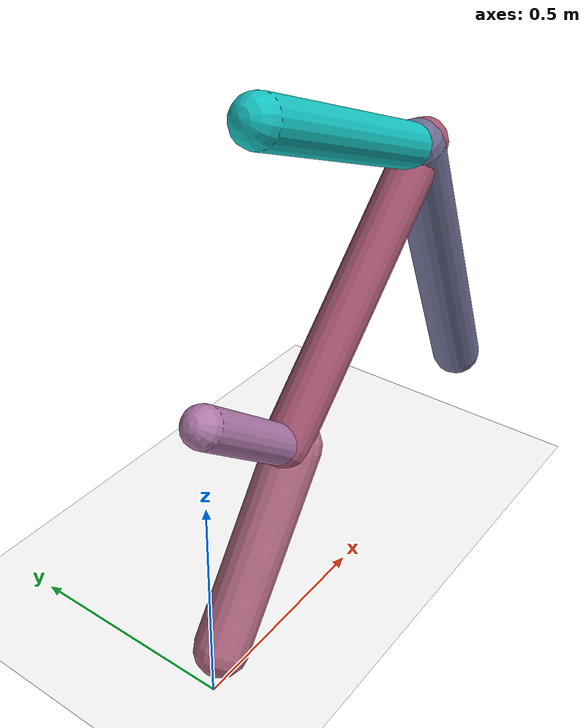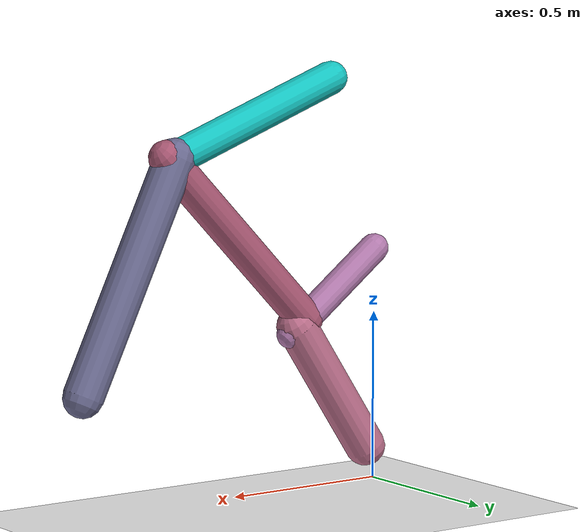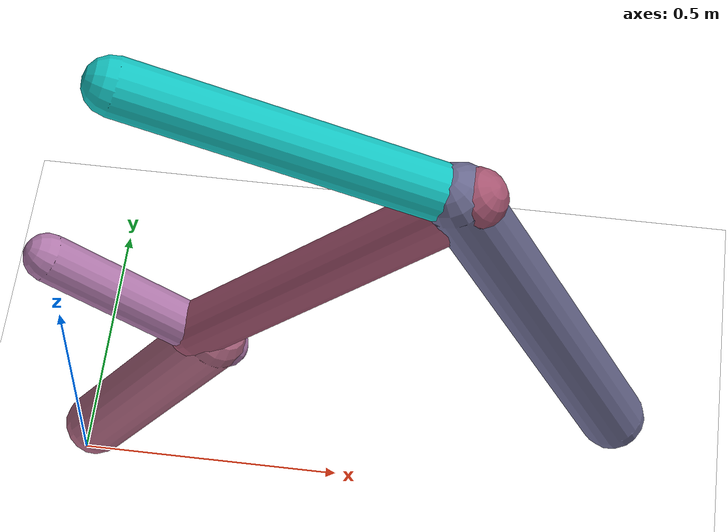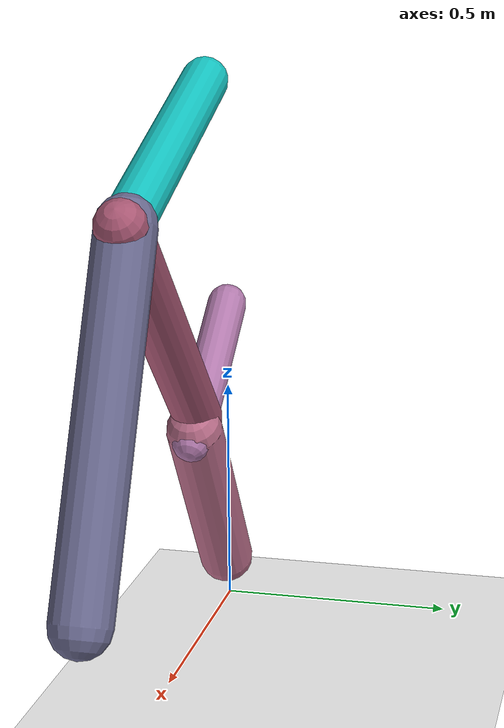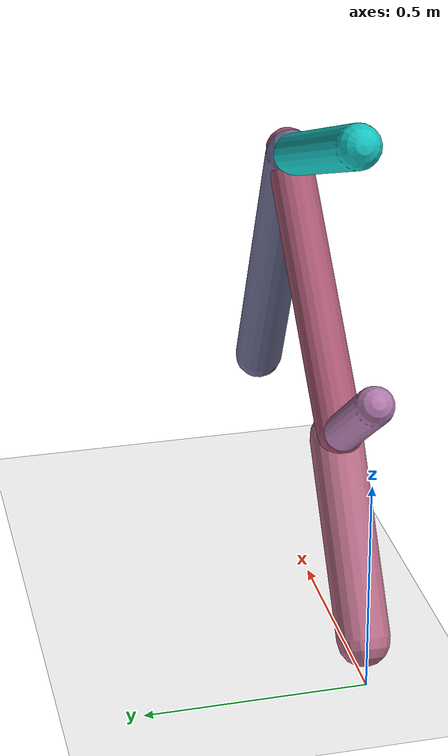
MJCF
<mujoco model="morphology">
  <option timestep="0.01"/>
  <default>
    <default class="/"/>
  </default>
  <asset>
    <texture name="texplane" type="2d" builtin="checker" rgb1="0.1 0.2 0.3" rgb2="0.2 0.3 0.4" width="300" height="300"/>
    <material name="MatPlane" class="/" texture="texplane" texrepeat="20 20" specular="1" shininess="1" reflectance="0.5"/>
  </asset>
  <worldbody>
    <light name="//unnamed_light_0" class="/" directional="true" pos="0 0 1.5" dir="0 0 -1.3" cutoff="1e+02" exponent="1" diffuse="1 1 1" specular="0.1 0.1 0.1"/>
    <geom name="ground" class="/" type="plane" size="15 15 0.5" material="MatPlane" rgba="1 1 1 1"/>
    <body name="body" pos="0 0 0.69">
      <geom name="geom0" class="/" type="capsule" contype="1" conaffinity="1" condim="3" size="0.043" rgba="0.7 0.48 0.68 1" friction="0.4 0.1 0.1" fromto="0 0 0 0.3 0 -0.23"/>
      <body name="body1" pos="0.28 0 -0.21">
        <geom name="geom1" class="/" type="capsule" contype="1" conaffinity="1" condim="3" size="0.06" rgba="0.73 0.43 0.54 1" friction="0.4 0.1 0.1" fromto="0 0 0 -0.25 0 -0.38"/>
        <joint name="joint1" class="/" type="hinge" axis="0 1 0" limited="true" stiffness="20" range="-36 36" armature="0.1" damping="2"/>
      </body>
      <body name="body2" pos="0.25 0 -0.19">
        <geom name="geom2" class="/" type="capsule" contype="1" conaffinity="1" condim="3" size="0.052" rgba="0.66 0.34 0.45 1" friction="0.4 0.1 0.1" fromto="0 0 0 0.48 0 0.5"/>
        <body name="body3" pos="0.47 0 0.49">
          <geom name="geom3" class="/" type="capsule" contype="1" conaffinity="1" condim="3" size="0.049" rgba="0.082 0.77 0.76 1" friction="0.4 0.1 0.1" fromto="0 0 0 -0.56 0 0.21"/>
          <body name="body4" pos="-0.018 0 0.0069">
            <geom name="geom4" class="/" type="capsule" contype="1" conaffinity="1" condim="3" size="0.059" rgba="0.42 0.42 0.57 1" friction="0.4 0.1 0.1" fromto="0 0 0 0.31 0 -0.65"/>
            <joint name="joint4" class="/" type="hinge" axis="0 1 0" limited="true" stiffness="20" range="-69 69" armature="0.1" damping="2"/>
          </body>
          <joint name="joint3" class="/" type="hinge" axis="0 1 0" limited="true" stiffness="20" range="-61 61" armature="0.1" damping="2"/>
        </body>
        <joint name="joint2" class="/" type="hinge" axis="0 1 0" limited="true" stiffness="20" range="-50 50" armature="0.1" damping="2"/>
      </body>
      <joint name="rootx" class="/" type="slide" axis="1 0 0" limited="false" stiffness="0" armature="0" damping="0"/>
      <joint name="rootz" class="/" type="slide" axis="0 0 1" limited="false" stiffness="0" armature="0" damping="0"/>
      <joint name="rooty" class="/" type="hinge" axis="0 1 0" limited="false" stiffness="0" armature="0" damping="0"/>
    </body>
  </worldbody>
  <actuator>
    <motor name="motor1" class="/" ctrllimited="true" ctrlrange="-1 1" gear="1.6e+02" joint="joint1"/>
    <motor name="motor4" class="/" ctrllimited="true" ctrlrange="-1 1" gear="1.2e+02" joint="joint4"/>
    <motor name="motor3" class="/" ctrllimited="true" ctrlrange="-1 1" gear="2e+02" joint="joint3"/>
    <motor name="motor2" class="/" ctrllimited="true" ctrlrange="-1 1" gear="1.7e+02" joint="joint2"/>
  </actuator>
  <sensor>
    <subtreelinvel name="velocity" body="body"/>
  </sensor>
</mujoco>
